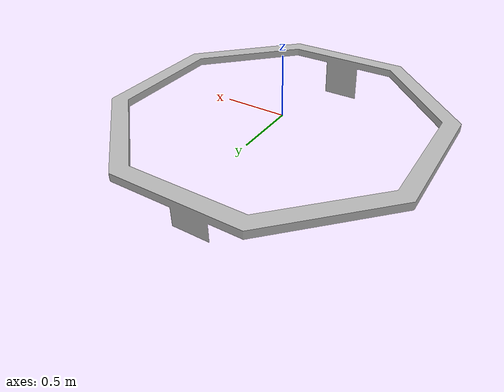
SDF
<?xml version="1.0"?>
<sdf version='1.9'>
  <model name='octagon'>
    <static>true</static>
    <link name='octagon'>
      <pose frame=''>0 0 0 0 0 0</pose>
      <inertial>
        <pose frame=''>0 0 0 0 0 0</pose>
        <mass>1</mass>
        <inertia>
          <ixx>0.166667</ixx>
          <ixy>0</ixy>
          <ixz>0</ixz>
          <iyy>0.166667</iyy>
          <iyz>0</iyz>
          <izz>0.166667</izz>
        </inertia>
      </inertial>
      <collision name='octagon_collision'>
        <pose frame=''>0 0 0 0 0 0</pose>
        <geometry>
          <mesh>
            <uri>model://octagon/updated_oct_floatie.dae</uri>
            <scale>1 1 1</scale>
          </mesh>
        </geometry>
      </collision>
      <visual name='octagon_visual'>
        <pose frame=''>0 0 0 0 0 0</pose>
        <geometry>
          <mesh>
            <uri>model://octagon/updated_oct_floatie.dae</uri>
            <scale>1 1 1</scale>
          </mesh>
        </geometry>

      </visual>
    </link>
  </model>

</sdf>

<!-- Added the octagon dae file with properly oriented images-->
